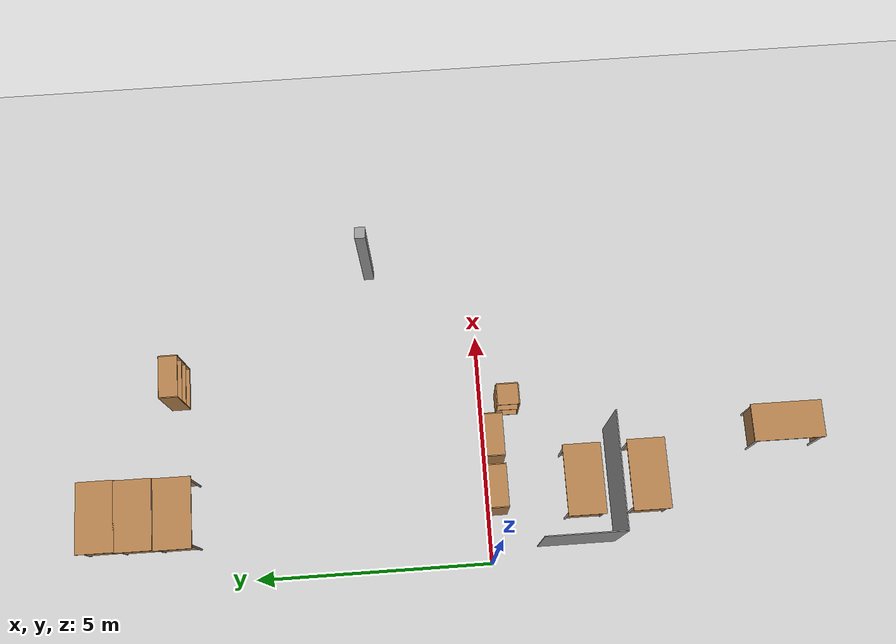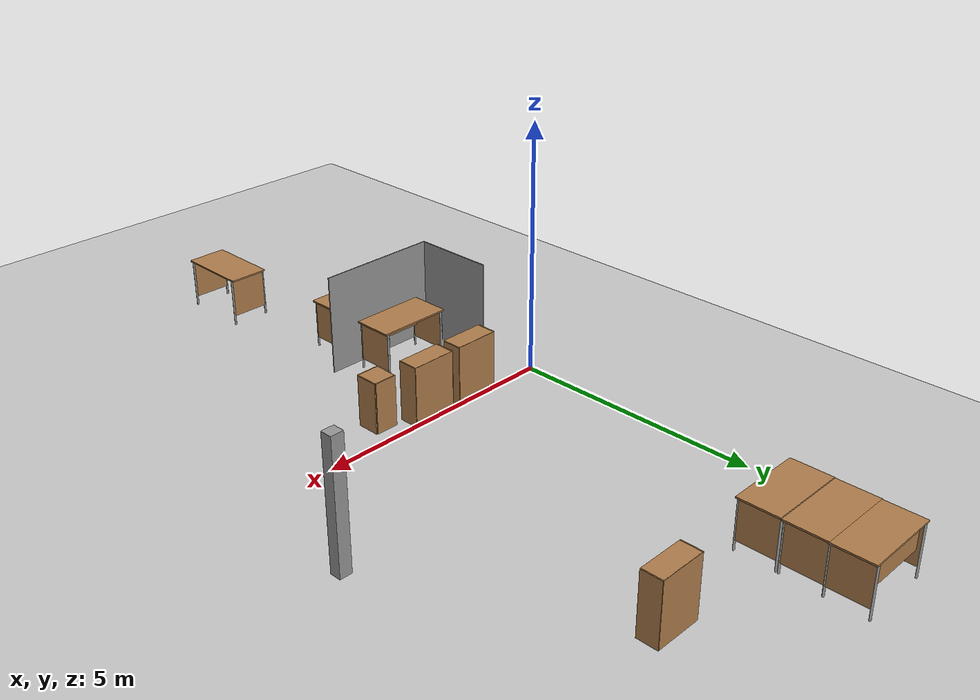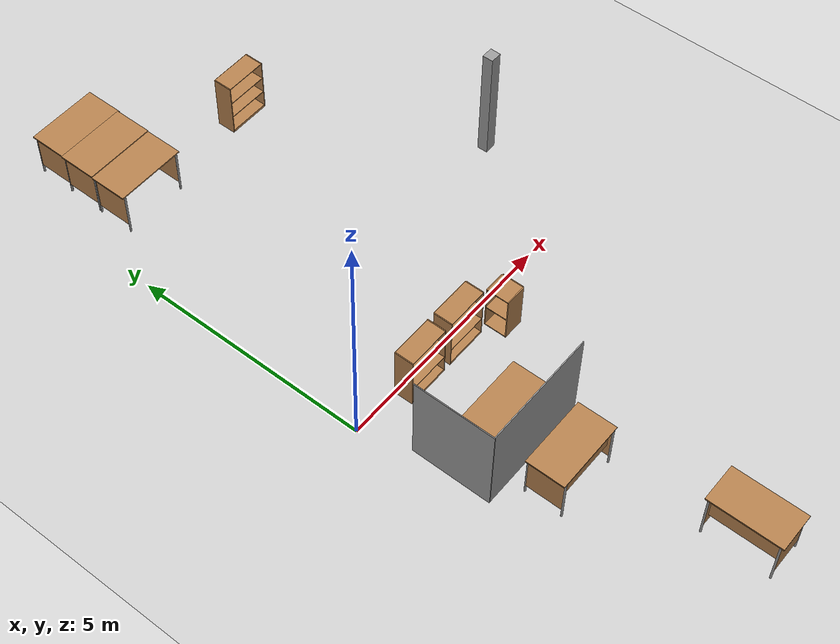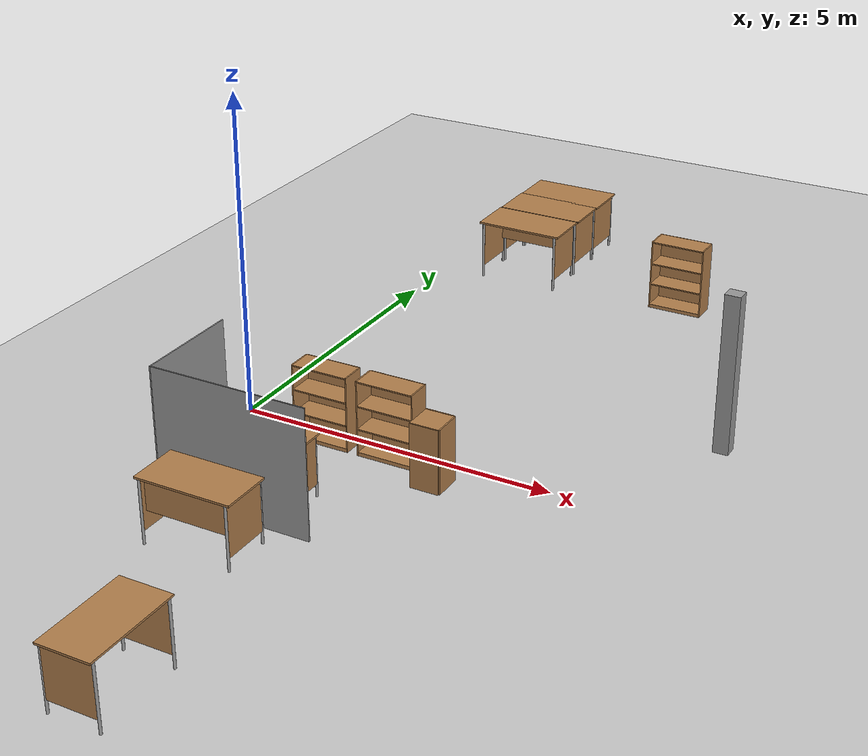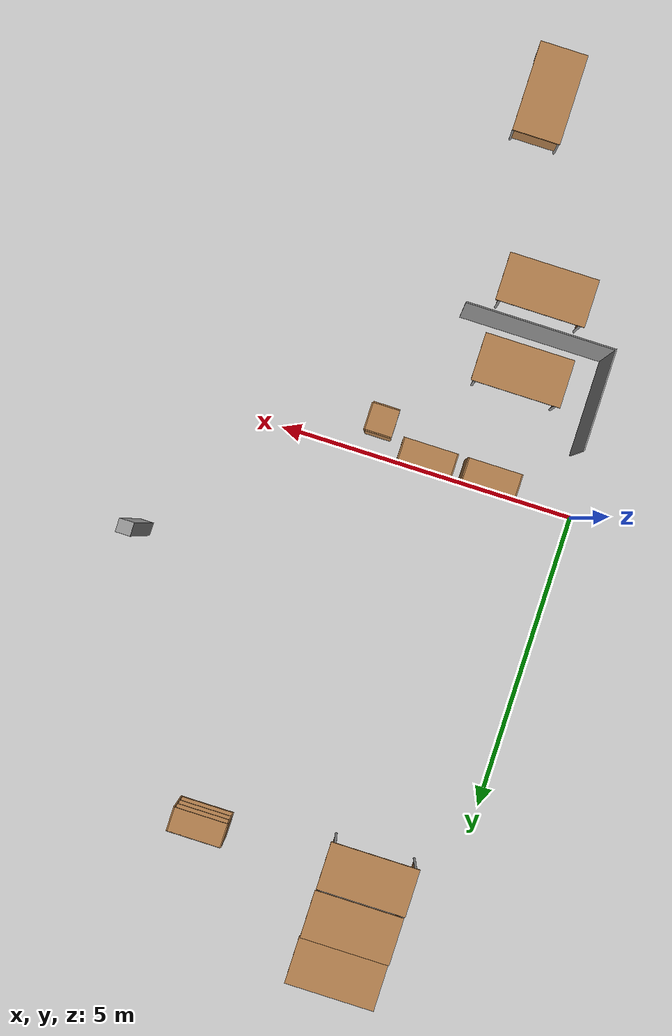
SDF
<sdf version="1.4">
 <world name="default">
  <model name="ground_plane">
   <static>1</static>
   <link name="link">
    <collision name="collision">
     <geometry><plane><normal>0 0 1</normal><size>100 100</size></plane></geometry>
     <surface><friction><ode><mu>100</mu><mu2>50</mu2></ode></friction></surface>
    </collision>
    <visual name="visual">
     <cast_shadows>0</cast_shadows>
     <geometry><plane><normal>0 0 1</normal><size>100 100</size></plane></geometry>
     <material>
      <script><uri>file://media/materials/scripts/gazebo.material</uri><name>Gazebo/Grey</name></script>
     </material>
    </visual>
    <velocity_decay><linear>0</linear><angular>0</angular></velocity_decay>
   </link>
  </model>
  <model name="teknopark_ik2">
   <link name="Wall_3">
    <collision name="Wall_3_Collision">
     <geometry><box><size>1.66 0.02 2</size></box></geometry>
     <pose>0 0 1 0 -0 0</pose>
    </collision>
    <visual name="Wall_3_Visual">
     <pose>0 0 1 0 -0 0</pose>
     <geometry><box><size>1.66 0.02 2</size></box></geometry>
     <material>
      <script><uri>file://media/materials/scripts/gazebo.material</uri><name>Gazebo/Grey</name></script>
     </material>
    </visual>
    <velocity_decay><linear>0</linear><angular>0</angular></velocity_decay>
    <pose>0.312 -1.818 0 0 -0 1.5708</pose>
   </link>
   <link name="Wall_9">
    <collision name="Wall_9_Collision">
     <geometry><box><size>2.45 0.02 2</size></box></geometry>
     <pose>0 0 1 0 -0 0</pose>
    </collision>
    <visual name="Wall_9_Visual">
     <pose>0 0 1 0 -0 0</pose>
     <geometry><box><size>2.45 0.02 2</size></box></geometry>
     <material>
      <script><uri>file://media/materials/scripts/gazebo.material</uri><name>Gazebo/Grey</name></script>
     </material>
    </visual>
    <velocity_decay><linear>0</linear><angular>0</angular></velocity_decay>
    <pose>1.528 -2.637 0 0 -0 0</pose>
   </link>
   <static>1</static>
  </model>
  <model name="table">
   <static>1</static>
   <link name="link">
    <collision name="surface">
     <pose>0 0 1 0 -0 0</pose>
     <geometry><box><size>1.5 0.8 0.03</size></box></geometry>
    </collision>
    <visual name="visual1">
     <pose>0 0 1 0 -0 0</pose>
     <geometry><box><size>1.5 0.8 0.03</size></box></geometry>
     <material>
      <script><uri>file://media/materials/scripts/gazebo.material</uri><name>Gazebo/Wood</name></script>
     </material>
    </visual>
    <collision name="surface_1">
     <pose>0 0.3 0.74 1.57 0 1.57</pose>
     <geometry><box><size>0.03 0.5 1.3</size></box></geometry>
    </collision>
    <visual name="visual_1">
     <pose>0 0.3 0.74 1.57 0 1.57</pose>
     <geometry><box><size>0.03 0.5 1.3</size></box></geometry>
     <material>
      <script><uri>file://media/materials/scripts/gazebo.material</uri><name>Gazebo/Wood</name></script>
     </material>
    </visual>
    <collision name="surface_2">
     <pose>-0.68 0 0.6 0 0 0</pose>
     <geometry><box><size>0.03 0.75 0.8</size></box></geometry>
    </collision>
    <visual name="visual_2">
     <pose>-0.68 0 0.6 0 0 0</pose>
     <geometry><box><size>0.03 0.75 0.8</size></box></geometry>
     <material>
      <script><uri>file://media/materials/scripts/gazebo.material</uri><name>Gazebo/Wood</name></script>
     </material>
    </visual>
    <collision name="surface_3">
     <pose>0.68 0 0.6 0 0 0</pose>
     <geometry><box><size>0.03 0.75 0.8</size></box></geometry>
    </collision>
    <visual name="visual_3">
     <pose>0.68 0 0.6 0 0 0</pose>
     <geometry><box><size>0.03 0.75 0.8</size></box></geometry>
     <material>
      <script><uri>file://media/materials/scripts/gazebo.material</uri><name>Gazebo/Wood</name></script>
     </material>
    </visual>
    <collision name="front_left_leg">
     <pose>0.68 0.38 0.5 0 -0 0</pose>
     <geometry><cylinder><radius>0.02</radius><length>1</length></cylinder></geometry>
    </collision>
    <visual name="front_left_leg">
     <pose>0.68 0.38 0.5 0 -0 0</pose>
     <geometry><cylinder><radius>0.02</radius><length>1</length></cylinder></geometry>
     <material>
      <script><uri>file://media/materials/scripts/gazebo.material</uri><name>Gazebo/Grey</name></script>
     </material>
    </visual>
    <collision name="front_right_leg">
     <pose>0.68 -0.38 0.5 0 -0 0</pose>
     <geometry><cylinder><radius>0.02</radius><length>1</length></cylinder></geometry>
    </collision>
    <visual name="front_right_leg">
     <pose>0.68 -0.38 0.5 0 -0 0</pose>
     <geometry><cylinder><radius>0.02</radius><length>1</length></cylinder></geometry>
     <material>
      <script><uri>file://media/materials/scripts/gazebo.material</uri><name>Gazebo/Grey</name></script>
     </material>
    </visual>
    <collision name="back_right_leg">
     <pose>-0.68 -0.38 0.5 0 -0 0</pose>
     <geometry><cylinder><radius>0.02</radius><length>1</length></cylinder></geometry>
    </collision>
    <visual name="back_right_leg">
     <pose>-0.68 -0.38 0.5 0 -0 0</pose>
     <geometry><cylinder><radius>0.02</radius><length>1</length></cylinder></geometry>
     <material>
      <script><uri>file://media/materials/scripts/gazebo.material</uri><name>Gazebo/Grey</name></script>
     </material>
    </visual>
    <collision name="back_left_leg">
     <pose>-0.68 0.38 0.5 0 -0 0</pose>
     <geometry><cylinder><radius>0.02</radius><length>1</length></cylinder></geometry>
    </collision>
    <visual name="back_left_leg">
     <pose>-0.68 0.38 0.5 0 -0 0</pose>
     <geometry><cylinder><radius>0.02</radius><length>1</length></cylinder></geometry>
     <material>
      <script><uri>file://media/materials/scripts/gazebo.material</uri><name>Gazebo/Grey</name></script>
     </material>
    </visual>
    <velocity_decay><linear>0</linear><angular>0</angular></velocity_decay>
   </link>
   <pose>2.471 -6.373 0 0 -0 1.57</pose>
  </model>
  <model name="bookshelf">
   <static>1</static>
   <link name="link">
    <inertial><mass>1</mass></inertial>
    <collision name="back">
     <pose>0 0.005 0.6 0 -0 0</pose>
     <geometry><box><size>0.9 0.01 1.2</size></box></geometry>
    </collision>
    <visual name="visual1">
     <pose>0 0.005 0.6 0 -0 0</pose>
     <geometry><box><size>0.9 0.01 1.2</size></box></geometry>
     <material>
      <script><uri>file://media/materials/scripts/gazebo.material</uri><name>Gazebo/Wood</name></script>
     </material>
    </visual>
    <collision name="left_side">
     <pose>0.45 -0.195 0.6 0 -0 0</pose>
     <geometry><box><size>0.02 0.4 1.2</size></box></geometry>
    </collision>
    <visual name="visual2">
     <pose>0.45 -0.195 0.6 0 -0 0</pose>
     <geometry><box><size>0.02 0.4 1.2</size></box></geometry>
     <material>
      <script><uri>file://media/materials/scripts/gazebo.material</uri><name>Gazebo/Wood</name></script>
     </material>
    </visual>
    <collision name="right_side">
     <pose>-0.45 -0.195 0.6 0 -0 0</pose>
     <geometry><box><size>0.02 0.4 1.2</size></box></geometry>
    </collision>
    <visual name="visual3">
     <pose>-0.45 -0.195 0.6 0 -0 0</pose>
     <geometry><box><size>0.02 0.4 1.2</size></box></geometry>
     <material>
      <script><uri>file://media/materials/scripts/gazebo.material</uri><name>Gazebo/Wood</name></script>
     </material>
    </visual>
    <collision name="bottom">
     <pose>0 -0.195 0.03 0 -0 0</pose>
     <geometry><box><size>0.88 0.4 0.06</size></box></geometry>
    </collision>
    <visual name="visual4">
     <pose>0 -0.195 0.03 0 -0 0</pose>
     <geometry><box><size>0.88 0.4 0.06</size></box></geometry>
     <material>
      <script><uri>file://media/materials/scripts/gazebo.material</uri><name>Gazebo/Wood</name></script>
     </material>
    </visual>
    <collision name="top">
     <pose>0 -0.195 1.19 0 -0 0</pose>
     <geometry><box><size>0.88 0.4 0.02</size></box></geometry>
    </collision>
    <visual name="visual5">
     <pose>0 -0.195 1.19 0 -0 0</pose>
     <geometry><box><size>0.88 0.4 0.02</size></box></geometry>
     <material>
      <script><uri>file://media/materials/scripts/gazebo.material</uri><name>Gazebo/Wood</name></script>
     </material>
    </visual>
    <collision name="low_shelf">
     <pose>0 -0.195 0.43 0 -0 0</pose>
     <geometry><box><size>0.88 0.4 0.02</size></box></geometry>
    </collision>
    <visual name="visual6">
     <pose>0 -0.195 0.43 0 -0 0</pose>
     <geometry><box><size>0.88 0.4 0.02</size></box></geometry>
     <material>
      <script><uri>file://media/materials/scripts/gazebo.material</uri><name>Gazebo/Wood</name></script>
     </material>
    </visual>
    <collision name="high_shelf">
     <pose>0 -0.195 0.8 0 -0 0</pose>
     <geometry><box><size>0.88 0.4 0.02</size></box></geometry>
    </collision>
    <visual name="visual7">
     <pose>0 -0.195 0.8 0 -0 0</pose>
     <geometry><box><size>0.88 0.4 0.02</size></box></geometry>
     <material>
      <script><uri>file://media/materials/scripts/gazebo.material</uri><name>Gazebo/Wood</name></script>
     </material>
    </visual>
    <velocity_decay><linear>0</linear><angular>0</angular></velocity_decay>
   </link>
   <pose>4.281 6.73 0 0 -0 0</pose>
  </model>
  <model name="cabinet">
   <static>1</static>
   <link name="cabinet_bottom_plate">
    <inertial>
     <pose>0 0 -1 0 -0 0</pose>
     <inertia><ixx>2.05</ixx><ixy>0</ixy><ixz>0</ixz><iyy>2.05</iyy><iyz>0</iyz><izz>2.05</izz></inertia>
     <mass>25</mass>
    </inertial>
    <collision name="cabinet_bottom_plate_geom">
     <pose>0 0 0.01 0 -0 0</pose>
     <geometry><box><size>0.45 0.45 0.02</size></box></geometry>
    </collision>
    <visual name="cabinet_bottom_plate_geom_visual">
     <pose>0 0 0.01 0 -0 0</pose>
     <geometry><box><size>0.45 0.45 0.02</size></box></geometry>
     <material>
      <script><uri>file://media/materials/scripts/gazebo.material</uri><name>Gazebo/Wood</name></script>
     </material>
    </visual>
    <collision name="cabinet_bottom_plate_geom_cabinet_back_plate">
     <pose>0.235 0 0.51 0 -0 0</pose>
     <geometry><box><size>0.02 0.45 1.02</size></box></geometry>
    </collision>
    <visual name="cabinet_bottom_plate_geom_cabinet_back_plate_visual">
     <pose>0.235 0 0.51 0 -0 0</pose>
     <geometry><box><size>0.02 0.45 1.02</size></box></geometry>
     <material>
      <script><uri>file://media/materials/scripts/gazebo.material</uri><name>Gazebo/Wood</name></script>
     </material>
    </visual>
    <collision name="cabinet_bottom_plate_geom_cabinet_left_plate">
     <pose>0 0.235 0.51 0 -0 0</pose>
     <geometry><box><size>0.45 0.02 1.02</size></box></geometry>
    </collision>
    <visual name="cabinet_bottom_plate_geom_cabinet_left_plate_visual">
     <pose>0 0.235 0.51 0 -0 0</pose>
     <geometry><box><size>0.45 0.02 1.02</size></box></geometry>
     <material>
      <script><uri>file://media/materials/scripts/gazebo.material</uri><name>Gazebo/Wood</name></script>
     </material>
    </visual>
    <collision name="cabinet_bottom_plate_geom_cabinet_middle_plate">
     <pose>0 0 0.51 0 -0 0</pose>
     <geometry><box><size>0.45 0.45 0.02</size></box></geometry>
    </collision>
    <visual name="cabinet_bottom_plate_geom_cabinet_middle_plate_visual">
     <pose>0 0 0.51 0 -0 0</pose>
     <geometry><box><size>0.45 0.45 0.02</size></box></geometry>
     <material>
      <script><uri>file://media/materials/scripts/gazebo.material</uri><name>Gazebo/Wood</name></script>
     </material>
    </visual>
    <collision name="cabinet_bottom_plate_geom_cabinet_right_plate">
     <pose>0 -0.235 0.51 0 -0 0</pose>
     <geometry><box><size>0.45 0.02 1.02</size></box></geometry>
    </collision>
    <visual name="cabinet_bottom_plate_geom_cabinet_right_plate_visual">
     <pose>0 -0.235 0.51 0 -0 0</pose>
     <geometry><box><size>0.45 0.02 1.02</size></box></geometry>
     <material>
      <script><uri>file://media/materials/scripts/gazebo.material</uri><name>Gazebo/Wood</name></script>
     </material>
    </visual>
    <collision name="cabinet_bottom_plate_geom_cabinet_top_plate">
     <pose>0 0 1.01 0 -0 0</pose>
     <geometry><box><size>0.45 0.45 0.02</size></box></geometry>
    </collision>
    <visual name="cabinet_bottom_plate_geom_cabinet_top_plate_visual">
     <pose>0 0 1.01 0 -0 0</pose>
     <geometry><box><size>0.45 0.45 0.02</size></box></geometry>
     <material>
      <script><uri>file://media/materials/scripts/gazebo.material</uri><name>Gazebo/Wood</name></script>
     </material>
    </visual>
    <velocity_decay><linear>0</linear><angular>0</angular></velocity_decay>
   </link>
   <pose>3.443 -0.556 0 0 -0 0</pose>
  </model>
  <model name="table_1">
   <static>1</static>
   <link name="link">
    <collision name="surface">
     <pose>0 0 1 0 -0 0</pose>
     <geometry><box><size>1.5 0.8 0.03</size></box></geometry>
    </collision>
    <visual name="visual1">
     <pose>0 0 1 0 -0 0</pose>
     <geometry><box><size>1.5 0.8 0.03</size></box></geometry>
     <material>
      <script><uri>file://media/materials/scripts/gazebo.material</uri><name>Gazebo/Wood</name></script>
     </material>
    </visual>
    <collision name="surface_1">
     <pose>0 -0.3 0.74 1.57 0 1.57</pose>
     <geometry><box><size>0.03 0.5 1.3</size></box></geometry>
    </collision>
    <visual name="visual_1">
     <pose>0 -0.3 0.74 1.57 0 1.57</pose>
     <geometry><box><size>0.03 0.5 1.3</size></box></geometry>
     <material>
      <script><uri>file://media/materials/scripts/gazebo.material</uri><name>Gazebo/Wood</name></script>
     </material>
    </visual>
    <collision name="surface_2">
     <pose>-0.68 0 0.6 0 0 0</pose>
     <geometry><box><size>0.03 0.75 0.8</size></box></geometry>
    </collision>
    <visual name="visual_2">
     <pose>-0.68 0 0.6 0 0 0</pose>
     <geometry><box><size>0.03 0.75 0.8</size></box></geometry>
     <material>
      <script><uri>file://media/materials/scripts/gazebo.material</uri><name>Gazebo/Wood</name></script>
     </material>
    </visual>
    <collision name="surface_3">
     <pose>0.68 0 0.6 0 0 0</pose>
     <geometry><box><size>0.03 0.75 0.8</size></box></geometry>
    </collision>
    <visual name="visual_3">
     <pose>0.68 0 0.6 0 0 0</pose>
     <geometry><box><size>0.03 0.75 0.8</size></box></geometry>
     <material>
      <script><uri>file://media/materials/scripts/gazebo.material</uri><name>Gazebo/Wood</name></script>
     </material>
    </visual>
    <collision name="front_left_leg">
     <pose>0.68 0.38 0.5 0 -0 0</pose>
     <geometry><cylinder><radius>0.02</radius><length>1</length></cylinder></geometry>
    </collision>
    <visual name="front_left_leg">
     <pose>0.68 0.38 0.5 0 -0 0</pose>
     <geometry><cylinder><radius>0.02</radius><length>1</length></cylinder></geometry>
     <material>
      <script><uri>file://media/materials/scripts/gazebo.material</uri><name>Gazebo/Grey</name></script>
     </material>
    </visual>
    <collision name="front_right_leg">
     <pose>0.68 -0.38 0.5 0 -0 0</pose>
     <geometry><cylinder><radius>0.02</radius><length>1</length></cylinder></geometry>
    </collision>
    <visual name="front_right_leg">
     <pose>0.68 -0.38 0.5 0 -0 0</pose>
     <geometry><cylinder><radius>0.02</radius><length>1</length></cylinder></geometry>
     <material>
      <script><uri>file://media/materials/scripts/gazebo.material</uri><name>Gazebo/Grey</name></script>
     </material>
    </visual>
    <collision name="back_right_leg">
     <pose>-0.68 -0.38 0.5 0 -0 0</pose>
     <geometry><cylinder><radius>0.02</radius><length>1</length></cylinder></geometry>
    </collision>
    <visual name="back_right_leg">
     <pose>-0.68 -0.38 0.5 0 -0 0</pose>
     <geometry><cylinder><radius>0.02</radius><length>1</length></cylinder></geometry>
     <material>
      <script><uri>file://media/materials/scripts/gazebo.material</uri><name>Gazebo/Grey</name></script>
     </material>
    </visual>
    <collision name="back_left_leg">
     <pose>-0.68 0.38 0.5 0 -0 0</pose>
     <geometry><cylinder><radius>0.02</radius><length>1</length></cylinder></geometry>
    </collision>
    <visual name="back_left_leg">
     <pose>-0.68 0.38 0.5 0 -0 0</pose>
     <geometry><cylinder><radius>0.02</radius><length>1</length></cylinder></geometry>
     <material>
      <script><uri>file://media/materials/scripts/gazebo.material</uri><name>Gazebo/Grey</name></script>
     </material>
    </visual>
    <velocity_decay><linear>0</linear><angular>0</angular></velocity_decay>
   </link>
   <pose>1.554 -3.348 0 0 -0 0</pose>
  </model>
  <model name="bookshelf_1">
   <static>1</static>
   <link name="link">
    <inertial><mass>1</mass></inertial>
    <collision name="back">
     <pose>0 0.005 0.6 0 -0 0</pose>
     <geometry><box><size>0.9 0.01 1.2</size></box></geometry>
    </collision>
    <visual name="visual1">
     <pose>0 0.005 0.6 0 -0 0</pose>
     <geometry><box><size>0.9 0.01 1.2</size></box></geometry>
     <material>
      <script><uri>file://media/materials/scripts/gazebo.material</uri><name>Gazebo/Wood</name></script>
     </material>
    </visual>
    <collision name="left_side">
     <pose>0.45 -0.195 0.6 0 -0 0</pose>
     <geometry><box><size>0.02 0.4 1.2</size></box></geometry>
    </collision>
    <visual name="visual2">
     <pose>0.45 -0.195 0.6 0 -0 0</pose>
     <geometry><box><size>0.02 0.4 1.2</size></box></geometry>
     <material>
      <script><uri>file://media/materials/scripts/gazebo.material</uri><name>Gazebo/Wood</name></script>
     </material>
    </visual>
    <collision name="right_side">
     <pose>-0.45 -0.195 0.6 0 -0 0</pose>
     <geometry><box><size>0.02 0.4 1.2</size></box></geometry>
    </collision>
    <visual name="visual3">
     <pose>-0.45 -0.195 0.6 0 -0 0</pose>
     <geometry><box><size>0.02 0.4 1.2</size></box></geometry>
     <material>
      <script><uri>file://media/materials/scripts/gazebo.material</uri><name>Gazebo/Wood</name></script>
     </material>
    </visual>
    <collision name="bottom">
     <pose>0 -0.195 0.03 0 -0 0</pose>
     <geometry><box><size>0.88 0.4 0.06</size></box></geometry>
    </collision>
    <visual name="visual4">
     <pose>0 -0.195 0.03 0 -0 0</pose>
     <geometry><box><size>0.88 0.4 0.06</size></box></geometry>
     <material>
      <script><uri>file://media/materials/scripts/gazebo.material</uri><name>Gazebo/Wood</name></script>
     </material>
    </visual>
    <collision name="top">
     <pose>0 -0.195 1.19 0 -0 0</pose>
     <geometry><box><size>0.88 0.4 0.02</size></box></geometry>
    </collision>
    <visual name="visual5">
     <pose>0 -0.195 1.19 0 -0 0</pose>
     <geometry><box><size>0.88 0.4 0.02</size></box></geometry>
     <material>
      <script><uri>file://media/materials/scripts/gazebo.material</uri><name>Gazebo/Wood</name></script>
     </material>
    </visual>
    <collision name="low_shelf">
     <pose>0 -0.195 0.43 0 -0 0</pose>
     <geometry><box><size>0.88 0.4 0.02</size></box></geometry>
    </collision>
    <visual name="visual6">
     <pose>0 -0.195 0.43 0 -0 0</pose>
     <geometry><box><size>0.88 0.4 0.02</size></box></geometry>
     <material>
      <script><uri>file://media/materials/scripts/gazebo.material</uri><name>Gazebo/Wood</name></script>
     </material>
    </visual>
    <collision name="high_shelf">
     <pose>0 -0.195 0.8 0 -0 0</pose>
     <geometry><box><size>0.88 0.4 0.02</size></box></geometry>
    </collision>
    <visual name="visual7">
     <pose>0 -0.195 0.8 0 -0 0</pose>
     <geometry><box><size>0.88 0.4 0.02</size></box></geometry>
     <material>
      <script><uri>file://media/materials/scripts/gazebo.material</uri><name>Gazebo/Wood</name></script>
     </material>
    </visual>
    <velocity_decay><linear>0</linear><angular>0</angular></velocity_decay>
   </link>
   <pose>2.57231 0 0 0 -0 0</pose>
  </model>
  <model name="bookshelf_2">
   <static>1</static>
   <link name="link">
    <inertial><mass>1</mass></inertial>
    <collision name="back">
     <pose>0 0.005 0.6 0 -0 0</pose>
     <geometry><box><size>0.9 0.01 1.2</size></box></geometry>
    </collision>
    <visual name="visual1">
     <pose>0 0.005 0.6 0 -0 0</pose>
     <geometry><box><size>0.9 0.01 1.2</size></box></geometry>
     <material>
      <script><uri>file://media/materials/scripts/gazebo.material</uri><name>Gazebo/Wood</name></script>
     </material>
    </visual>
    <collision name="left_side">
     <pose>0.45 -0.195 0.6 0 -0 0</pose>
     <geometry><box><size>0.02 0.4 1.2</size></box></geometry>
    </collision>
    <visual name="visual2">
     <pose>0.45 -0.195 0.6 0 -0 0</pose>
     <geometry><box><size>0.02 0.4 1.2</size></box></geometry>
     <material>
      <script><uri>file://media/materials/scripts/gazebo.material</uri><name>Gazebo/Wood</name></script>
     </material>
    </visual>
    <collision name="right_side">
     <pose>-0.45 -0.195 0.6 0 -0 0</pose>
     <geometry><box><size>0.02 0.4 1.2</size></box></geometry>
    </collision>
    <visual name="visual3">
     <pose>-0.45 -0.195 0.6 0 -0 0</pose>
     <geometry><box><size>0.02 0.4 1.2</size></box></geometry>
     <material>
      <script><uri>file://media/materials/scripts/gazebo.material</uri><name>Gazebo/Wood</name></script>
     </material>
    </visual>
    <collision name="bottom">
     <pose>0 -0.195 0.03 0 -0 0</pose>
     <geometry><box><size>0.88 0.4 0.06</size></box></geometry>
    </collision>
    <visual name="visual4">
     <pose>0 -0.195 0.03 0 -0 0</pose>
     <geometry><box><size>0.88 0.4 0.06</size></box></geometry>
     <material>
      <script><uri>file://media/materials/scripts/gazebo.material</uri><name>Gazebo/Wood</name></script>
     </material>
    </visual>
    <collision name="top">
     <pose>0 -0.195 1.19 0 -0 0</pose>
     <geometry><box><size>0.88 0.4 0.02</size></box></geometry>
    </collision>
    <visual name="visual5">
     <pose>0 -0.195 1.19 0 -0 0</pose>
     <geometry><box><size>0.88 0.4 0.02</size></box></geometry>
     <material>
      <script><uri>file://media/materials/scripts/gazebo.material</uri><name>Gazebo/Wood</name></script>
     </material>
    </visual>
    <collision name="low_shelf">
     <pose>0 -0.195 0.43 0 -0 0</pose>
     <geometry><box><size>0.88 0.4 0.02</size></box></geometry>
    </collision>
    <visual name="visual6">
     <pose>0 -0.195 0.43 0 -0 0</pose>
     <geometry><box><size>0.88 0.4 0.02</size></box></geometry>
     <material>
      <script><uri>file://media/materials/scripts/gazebo.material</uri><name>Gazebo/Wood</name></script>
     </material>
    </visual>
    <collision name="high_shelf">
     <pose>0 -0.195 0.8 0 -0 0</pose>
     <geometry><box><size>0.88 0.4 0.02</size></box></geometry>
    </collision>
    <visual name="visual7">
     <pose>0 -0.195 0.8 0 -0 0</pose>
     <geometry><box><size>0.88 0.4 0.02</size></box></geometry>
     <material>
      <script><uri>file://media/materials/scripts/gazebo.material</uri><name>Gazebo/Wood</name></script>
     </material>
    </visual>
    <velocity_decay><linear>0</linear><angular>0</angular></velocity_decay>
   </link>
   <pose>1.49547 0 0 0 -0 0</pose>
  </model>
  <model name="table_7">
   <static>1</static>
   <link name="link">
    <collision name="surface">
     <pose>0 0 1 0 -0 0</pose>
     <geometry><box><size>1.5 0.8 0.03</size></box></geometry>
    </collision>
    <visual name="visual1">
     <pose>0 0 1 0 -0 0</pose>
     <geometry><box><size>1.5 0.8 0.03</size></box></geometry>
     <material>
      <script><uri>file://media/materials/scripts/gazebo.material</uri><name>Gazebo/Wood</name></script>
     </material>
    </visual>
    <collision name="surface_1">
     <pose>0 -0.3 0.74 1.57 0 1.57</pose>
     <geometry><box><size>0.03 0.5 1.3</size></box></geometry>
    </collision>
    <visual name="visual_1">
     <pose>0 -0.3 0.74 1.57 0 1.57</pose>
     <geometry><box><size>0.03 0.5 1.3</size></box></geometry>
     <material>
      <script><uri>file://media/materials/scripts/gazebo.material</uri><name>Gazebo/Wood</name></script>
     </material>
    </visual>
    <collision name="surface_2">
     <pose>-0.68 0 0.6 0 0 0</pose>
     <geometry><box><size>0.03 0.75 0.8</size></box></geometry>
    </collision>
    <visual name="visual_2">
     <pose>-0.68 0 0.6 0 0 0</pose>
     <geometry><box><size>0.03 0.75 0.8</size></box></geometry>
     <material>
      <script><uri>file://media/materials/scripts/gazebo.material</uri><name>Gazebo/Wood</name></script>
     </material>
    </visual>
    <collision name="surface_3">
     <pose>0.68 0 0.6 0 0 0</pose>
     <geometry><box><size>0.03 0.75 0.8</size></box></geometry>
    </collision>
    <visual name="visual_3">
     <pose>0.68 0 0.6 0 0 0</pose>
     <geometry><box><size>0.03 0.75 0.8</size></box></geometry>
     <material>
      <script><uri>file://media/materials/scripts/gazebo.material</uri><name>Gazebo/Wood</name></script>
     </material>
    </visual>
    <collision name="front_left_leg">
     <pose>0.68 0.38 0.5 0 -0 0</pose>
     <geometry><cylinder><radius>0.02</radius><length>1</length></cylinder></geometry>
    </collision>
    <visual name="front_left_leg">
     <pose>0.68 0.38 0.5 0 -0 0</pose>
     <geometry><cylinder><radius>0.02</radius><length>1</length></cylinder></geometry>
     <material>
      <script><uri>file://media/materials/scripts/gazebo.material</uri><name>Gazebo/Grey</name></script>
     </material>
    </visual>
    <collision name="front_right_leg">
     <pose>0.68 -0.38 0.5 0 -0 0</pose>
     <geometry><cylinder><radius>0.02</radius><length>1</length></cylinder></geometry>
    </collision>
    <visual name="front_right_leg">
     <pose>0.68 -0.38 0.5 0 -0 0</pose>
     <geometry><cylinder><radius>0.02</radius><length>1</length></cylinder></geometry>
     <material>
      <script><uri>file://media/materials/scripts/gazebo.material</uri><name>Gazebo/Grey</name></script>
     </material>
    </visual>
    <collision name="back_right_leg">
     <pose>-0.68 -0.38 0.5 0 -0 0</pose>
     <geometry><cylinder><radius>0.02</radius><length>1</length></cylinder></geometry>
    </collision>
    <visual name="back_right_leg">
     <pose>-0.68 -0.38 0.5 0 -0 0</pose>
     <geometry><cylinder><radius>0.02</radius><length>1</length></cylinder></geometry>
     <material>
      <script><uri>file://media/materials/scripts/gazebo.material</uri><name>Gazebo/Grey</name></script>
     </material>
    </visual>
    <collision name="back_left_leg">
     <pose>-0.68 0.38 0.5 0 -0 0</pose>
     <geometry><cylinder><radius>0.02</radius><length>1</length></cylinder></geometry>
    </collision>
    <visual name="back_left_leg">
     <pose>-0.68 0.38 0.5 0 -0 0</pose>
     <geometry><cylinder><radius>0.02</radius><length>1</length></cylinder></geometry>
     <material>
      <script><uri>file://media/materials/scripts/gazebo.material</uri><name>Gazebo/Grey</name></script>
     </material>
    </visual>
    <velocity_decay><linear>0</linear><angular>0</angular></velocity_decay>
   </link>
   <pose>1.53747 -2 0 0 -0 0</pose>
  </model>
  <model name="table_8">
   <static>1</static>
   <link name="link">
    <collision name="surface">
     <pose>0 0 1 0 -0 0</pose>
     <geometry><box><size>1.5 0.8 0.03</size></box></geometry>
    </collision>
    <visual name="visual1">
     <pose>0 0 1 0 -0 0</pose>
     <geometry><box><size>1.5 0.8 0.03</size></box></geometry>
     <material>
      <script><uri>file://media/materials/scripts/gazebo.material</uri><name>Gazebo/Wood</name></script>
     </material>
    </visual>
    <collision name="surface_1">
     <pose>0 0.3 0.74 1.57 0 1.57</pose>
     <geometry><box><size>0.03 1.3 0.5</size></box></geometry>
    </collision>
    <visual name="visual_1">
     <pose>0 0.3 0.74 1.57 0 1.57</pose>
     <geometry><box><size>0.03 0.5 1.3</size></box></geometry>
     <material>
      <script><uri>file://media/materials/scripts/gazebo.material</uri><name>Gazebo/Wood</name></script>
     </material>
    </visual>
    <collision name="surface_2">
     <pose>-0.68 0 0.6 0 0 1.57</pose>
     <geometry><box><size>0.03 0.75 0.8</size></box></geometry>
    </collision>
    <visual name="visual_2">
     <pose>-0.68 0 0.6 0 0 0</pose>
     <geometry><box><size>0.03 0.75 0.8</size></box></geometry>
     <material>
      <script><uri>file://media/materials/scripts/gazebo.material</uri><name>Gazebo/Wood</name></script>
     </material>
    </visual>
    <collision name="surface_3">
     <pose>0.68 0 0.6 0 0 1.57</pose>
     <geometry><box><size>0.03 0.75 0.8</size></box></geometry>
    </collision>
    <visual name="visual_3">
     <pose>0.68 0 0.6 0 0 0</pose>
     <geometry><box><size>0.03 0.75 0.8</size></box></geometry>
     <material>
      <script><uri>file://media/materials/scripts/gazebo.material</uri><name>Gazebo/Wood</name></script>
     </material>
    </visual>
    <collision name="front_left_leg">
     <pose>0.68 0.38 0.5 0 -0 0</pose>
     <geometry><cylinder><radius>0.02</radius><length>1</length></cylinder></geometry>
    </collision>
    <visual name="front_left_leg">
     <pose>0.68 0.38 0.5 0 -0 0</pose>
     <geometry><cylinder><radius>0.02</radius><length>1</length></cylinder></geometry>
     <material>
      <script><uri>file://media/materials/scripts/gazebo.material</uri><name>Gazebo/Grey</name></script>
     </material>
    </visual>
    <collision name="front_right_leg">
     <pose>0.68 -0.38 0.5 0 -0 0</pose>
     <geometry><cylinder><radius>0.02</radius><length>1</length></cylinder></geometry>
    </collision>
    <visual name="front_right_leg">
     <pose>0.68 -0.38 0.5 0 -0 0</pose>
     <geometry><cylinder><radius>0.02</radius><length>1</length></cylinder></geometry>
     <material>
      <script><uri>file://media/materials/scripts/gazebo.material</uri><name>Gazebo/Grey</name></script>
     </material>
    </visual>
    <collision name="back_right_leg">
     <pose>-0.68 -0.38 0.5 0 -0 0</pose>
     <geometry><cylinder><radius>0.02</radius><length>1</length></cylinder></geometry>
    </collision>
    <visual name="back_right_leg">
     <pose>-0.68 -0.38 0.5 0 -0 0</pose>
     <geometry><cylinder><radius>0.02</radius><length>1</length></cylinder></geometry>
     <material>
      <script><uri>file://media/materials/scripts/gazebo.material</uri><name>Gazebo/Grey</name></script>
     </material>
    </visual>
    <collision name="back_left_leg">
     <pose>-0.68 0.38 0.5 0 -0 0</pose>
     <geometry><cylinder><radius>0.02</radius><length>1</length></cylinder></geometry>
    </collision>
    <visual name="back_left_leg">
     <pose>-0.68 0.38 0.5 0 -0 0</pose>
     <geometry><cylinder><radius>0.02</radius><length>1</length></cylinder></geometry>
     <material>
      <script><uri>file://media/materials/scripts/gazebo.material</uri><name>Gazebo/Grey</name></script>
     </material>
    </visual>
    <velocity_decay><linear>0</linear><angular>0</angular></velocity_decay>
   </link>
   <pose>1.433 7.353 0 0 -0 0</pose>
  </model>
  <model name="table_9">
   <static>1</static>
   <link name="link">
    <collision name="surface">
     <pose>0 0 1 0 -0 0</pose>
     <geometry><box><size>1.5 0.8 0.03</size></box></geometry>
    </collision>
    <visual name="visual1">
     <pose>0 0 1 0 -0 0</pose>
     <geometry><box><size>1.5 0.8 0.03</size></box></geometry>
     <material>
      <script><uri>file://media/materials/scripts/gazebo.material</uri><name>Gazebo/Wood</name></script>
     </material>
    </visual>
    <collision name="surface_1">
     <pose>0 0.3 0.74 1.57 0 1.57</pose>
     <geometry><box><size>0.03 1.3 0.5</size></box></geometry>
    </collision>
    <visual name="visual_1">
     <pose>0 0.3 0.74 1.57 0 1.57</pose>
     <geometry><box><size>0.03 0.5 1.3</size></box></geometry>
     <material>
      <script><uri>file://media/materials/scripts/gazebo.material</uri><name>Gazebo/Wood</name></script>
     </material>
    </visual>
    <collision name="surface_2">
     <pose>-0.68 0 0.6 0 0 1.57</pose>
     <geometry><box><size>0.03 0.75 0.8</size></box></geometry>
    </collision>
    <visual name="visual_2">
     <pose>-0.68 0 0.6 0 0 0</pose>
     <geometry><box><size>0.03 0.75 0.8</size></box></geometry>
     <material>
      <script><uri>file://media/materials/scripts/gazebo.material</uri><name>Gazebo/Wood</name></script>
     </material>
    </visual>
    <collision name="surface_3">
     <pose>0.68 0 0.6 0 0 1.57</pose>
     <geometry><box><size>0.03 0.75 0.8</size></box></geometry>
    </collision>
    <visual name="visual_3">
     <pose>0.68 0 0.6 0 0 0</pose>
     <geometry><box><size>0.03 0.75 0.8</size></box></geometry>
     <material>
      <script><uri>file://media/materials/scripts/gazebo.material</uri><name>Gazebo/Wood</name></script>
     </material>
    </visual>
    <collision name="front_left_leg">
     <pose>0.68 0.38 0.5 0 -0 0</pose>
     <geometry><cylinder><radius>0.02</radius><length>1</length></cylinder></geometry>
    </collision>
    <visual name="front_left_leg">
     <pose>0.68 0.38 0.5 0 -0 0</pose>
     <geometry><cylinder><radius>0.02</radius><length>1</length></cylinder></geometry>
     <material>
      <script><uri>file://media/materials/scripts/gazebo.material</uri><name>Gazebo/Grey</name></script>
     </material>
    </visual>
    <collision name="front_right_leg">
     <pose>0.68 -0.38 0.5 0 -0 0</pose>
     <geometry><cylinder><radius>0.02</radius><length>1</length></cylinder></geometry>
    </collision>
    <visual name="front_right_leg">
     <pose>0.68 -0.38 0.5 0 -0 0</pose>
     <geometry><cylinder><radius>0.02</radius><length>1</length></cylinder></geometry>
     <material>
      <script><uri>file://media/materials/scripts/gazebo.material</uri><name>Gazebo/Grey</name></script>
     </material>
    </visual>
    <collision name="back_right_leg">
     <pose>-0.68 -0.38 0.5 0 -0 0</pose>
     <geometry><cylinder><radius>0.02</radius><length>1</length></cylinder></geometry>
    </collision>
    <visual name="back_right_leg">
     <pose>-0.68 -0.38 0.5 0 -0 0</pose>
     <geometry><cylinder><radius>0.02</radius><length>1</length></cylinder></geometry>
     <material>
      <script><uri>file://media/materials/scripts/gazebo.material</uri><name>Gazebo/Grey</name></script>
     </material>
    </visual>
    <collision name="back_left_leg">
     <pose>-0.68 0.38 0.5 0 -0 0</pose>
     <geometry><cylinder><radius>0.02</radius><length>1</length></cylinder></geometry>
    </collision>
    <visual name="back_left_leg">
     <pose>-0.68 0.38 0.5 0 -0 0</pose>
     <geometry><cylinder><radius>0.02</radius><length>1</length></cylinder></geometry>
     <material>
      <script><uri>file://media/materials/scripts/gazebo.material</uri><name>Gazebo/Grey</name></script>
     </material>
    </visual>
    <velocity_decay><linear>0</linear><angular>0</angular></velocity_decay>
   </link>
   <pose>1.42 6.536 0 0 -0 0</pose>
  </model>
  <model name="table_10">
   <static>1</static>
   <link name="link">
    <collision name="surface">
     <pose>0 0 1 0 -0 0</pose>
     <geometry><box><size>1.5 0.8 0.03</size></box></geometry>
    </collision>
    <visual name="visual1">
     <pose>0 0 1 0 -0 0</pose>
     <geometry><box><size>1.5 0.8 0.03</size></box></geometry>
     <material>
      <script><uri>file://media/materials/scripts/gazebo.material</uri><name>Gazebo/Wood</name></script>
     </material>
    </visual>
    <collision name="surface_1">
     <pose>0 0.3 0.74 1.57 0 1.57</pose>
     <geometry><box><size>0.03 1.3 0.5</size></box></geometry>
    </collision>
    <visual name="visual_1">
     <pose>0 0.3 0.74 1.57 0 1.57</pose>
     <geometry><box><size>0.03 0.5 1.3</size></box></geometry>
     <material>
      <script><uri>file://media/materials/scripts/gazebo.material</uri><name>Gazebo/Wood</name></script>
     </material>
    </visual>
    <collision name="surface_2">
     <pose>-0.68 0 0.6 0 0 1.57</pose>
     <geometry><box><size>0.03 0.75 0.8</size></box></geometry>
    </collision>
    <visual name="visual_2">
     <pose>-0.68 0 0.6 0 0 0</pose>
     <geometry><box><size>0.03 0.75 0.8</size></box></geometry>
     <material>
      <script><uri>file://media/materials/scripts/gazebo.material</uri><name>Gazebo/Wood</name></script>
     </material>
    </visual>
    <collision name="surface_3">
     <pose>0.68 0 0.6 0 0 1.57</pose>
     <geometry><box><size>0.03 0.75 0.8</size></box></geometry>
    </collision>
    <visual name="visual_3">
     <pose>0.68 0 0.6 0 0 0</pose>
     <geometry><box><size>0.03 0.75 0.8</size></box></geometry>
     <material>
      <script><uri>file://media/materials/scripts/gazebo.material</uri><name>Gazebo/Wood</name></script>
     </material>
    </visual>
    <collision name="front_left_leg">
     <pose>0.68 0.38 0.5 0 -0 0</pose>
     <geometry><cylinder><radius>0.02</radius><length>1</length></cylinder></geometry>
    </collision>
    <visual name="front_left_leg">
     <pose>0.68 0.38 0.5 0 -0 0</pose>
     <geometry><cylinder><radius>0.02</radius><length>1</length></cylinder></geometry>
     <material>
      <script><uri>file://media/materials/scripts/gazebo.material</uri><name>Gazebo/Grey</name></script>
     </material>
    </visual>
    <collision name="front_right_leg">
     <pose>0.68 -0.38 0.5 0 -0 0</pose>
     <geometry><cylinder><radius>0.02</radius><length>1</length></cylinder></geometry>
    </collision>
    <visual name="front_right_leg">
     <pose>0.68 -0.38 0.5 0 -0 0</pose>
     <geometry><cylinder><radius>0.02</radius><length>1</length></cylinder></geometry>
     <material>
      <script><uri>file://media/materials/scripts/gazebo.material</uri><name>Gazebo/Grey</name></script>
     </material>
    </visual>
    <collision name="back_right_leg">
     <pose>-0.68 -0.38 0.5 0 -0 0</pose>
     <geometry><cylinder><radius>0.02</radius><length>1</length></cylinder></geometry>
    </collision>
    <visual name="back_right_leg">
     <pose>-0.68 -0.38 0.5 0 -0 0</pose>
     <geometry><cylinder><radius>0.02</radius><length>1</length></cylinder></geometry>
     <material>
      <script><uri>file://media/materials/scripts/gazebo.material</uri><name>Gazebo/Grey</name></script>
     </material>
    </visual>
    <collision name="back_left_leg">
     <pose>-0.68 0.38 0.5 0 -0 0</pose>
     <geometry><cylinder><radius>0.02</radius><length>1</length></cylinder></geometry>
    </collision>
    <visual name="back_left_leg">
     <pose>-0.68 0.38 0.5 0 -0 0</pose>
     <geometry><cylinder><radius>0.02</radius><length>1</length></cylinder></geometry>
     <material>
      <script><uri>file://media/materials/scripts/gazebo.material</uri><name>Gazebo/Grey</name></script>
     </material>
    </visual>
    <velocity_decay><linear>0</linear><angular>0</angular></velocity_decay>
   </link>
   <pose>1.448 8.124 0 0 -0 0</pose>
  </model>
  <model name="teknopart_v_1_2">
   <static>1</static>
   <link name="__default__"><velocity_decay><linear>0</linear><angular>0</angular></velocity_decay></link>
  </model>
  <model name="kilic.sdf">
   <static>1</static>
   <link name="__default__"><velocity_decay><linear>0</linear><angular>0</angular></velocity_decay></link>
  </model>
  <model name="Teknopark_v_1_2.sdf">
   <link name="Wall_0">
    <collision name="Wall_0_Collision">
     <geometry><box><size>0.24 0.22 2.5</size></box></geometry>
     <pose>0 0 1.25 0 -0 0</pose>
    </collision>
    <visual name="Wall_0_Visual">
     <pose>0 0 1.25 0 -0 0</pose>
     <geometry><box><size>0.24 0.22 2.5</size></box></geometry>
     <material>
      <script><uri>file://media/materials/scripts/gazebo.material</uri><name>Gazebo/Grey</name></script>
     </material>
    </visual>
    <velocity_decay><linear>0</linear><angular>0</angular></velocity_decay>
    <pose>6.66957 2.27524 0 0 -0 0</pose>
   </link>
   <static>1</static>
  </model>
 </world>
</sdf>
